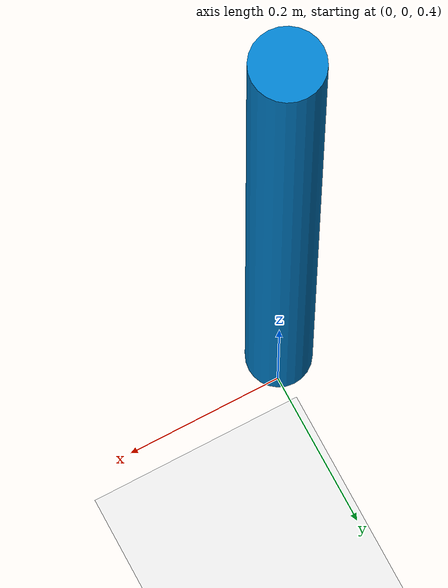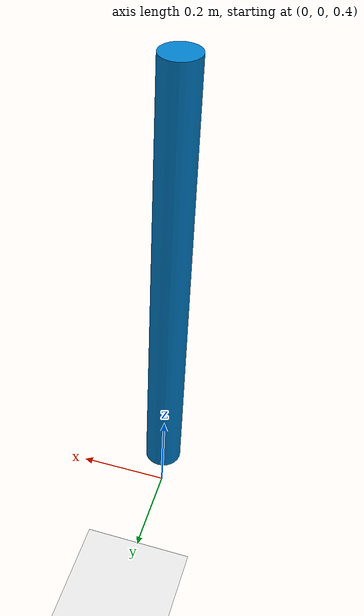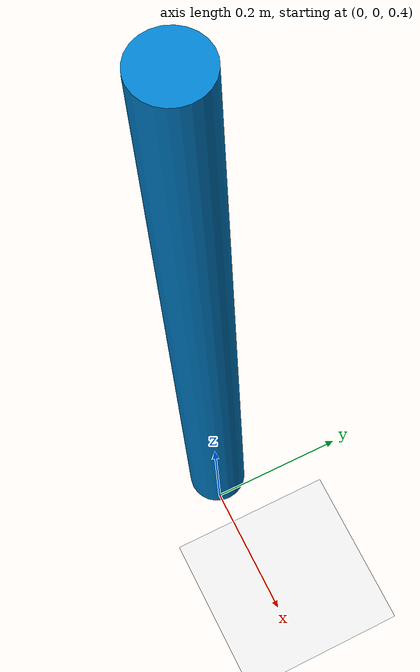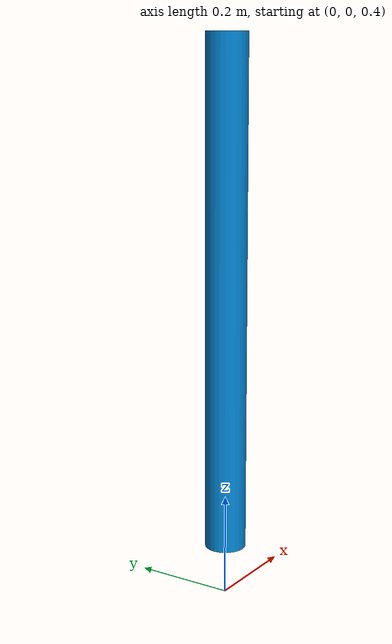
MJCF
<mujoco model="inverted pendulum">
    <option timestep="0.002" gravity="0 0 -9.81"/>
    <worldbody>
        <geom type="plane" size="3 3 0.1" rgba=".9 .9 .9 1"/>
        <!-- Raised to 1.5m so the 1m pole hangs cleanly above the floor -->
        <body name="pole" pos="0 0 1.5">
            <joint name="hinge" type="hinge" axis="0 1 0"/>
            <geom type="cylinder" size="0.04 0.5" pos="0 0 -0.5" mass="1" rgba="0 0.5 0.8 1"/>
        </body>
    </worldbody>
    <actuator>
        <motor joint="hinge" name="torque" ctrlrange="-50 50"/>
    </actuator>
</mujoco>
